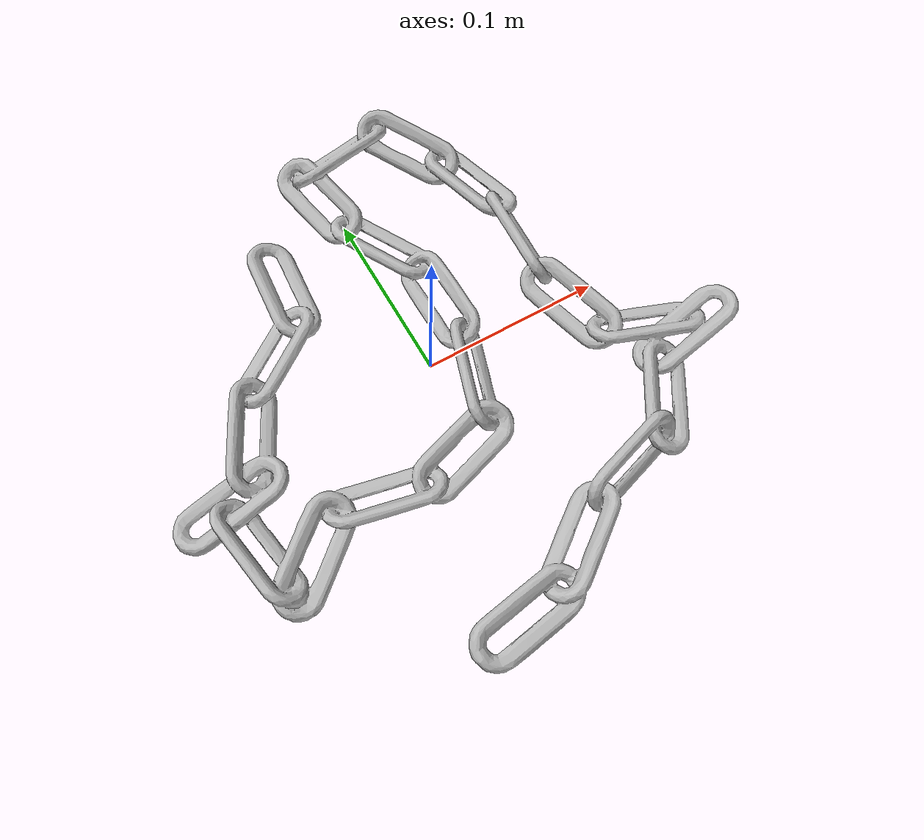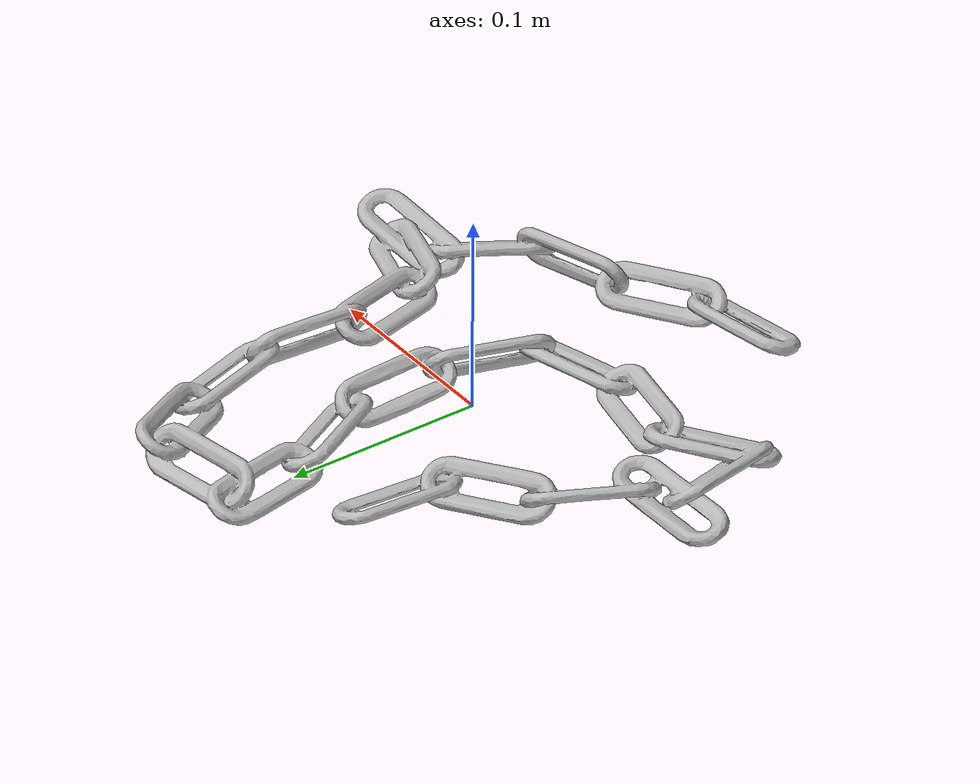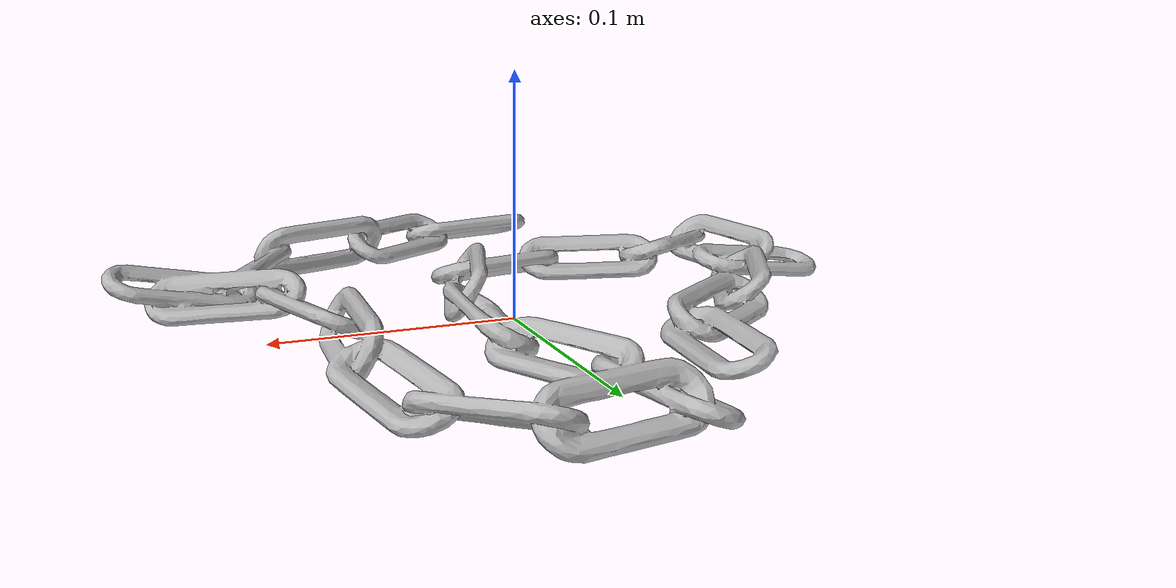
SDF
<?xml version="1.0" ?>
<sdf version='1.8'>
  <model name='ycb_059_chain'>
    <link name='body'>
      <inertial>
        <mass>0.1</mass>
        <pose>0.00370006207 -0.0029946739 0.00969024774 0 0 0</pose>
        <inertia>
          <ixx>0.000636099234782</ixx>
          <ixy>-4.39731361801e-05</ixy>
          <ixz>-5.32254429225e-06</ixz>
          <iyy>0.000558358205085</iyy>
          <iyz>-9.63504054245e-07</iyz>
          <izz>0.00118928367282</izz>
        </inertia>
      </inertial>
      <visual name='ycb_059_chain_visual'>
        <pose>0.037975 -0.02117 0.00068 0 0 0</pose>
        <geometry>
          <mesh>
            <uri>model://ycb_059_chain/meshes/textured.dae</uri>
          </mesh>
        </geometry>
      </visual>
      <collision name='ycb_059_chain_collision'>
        <pose>0.037975 -0.02117 0.00068 0 0 0</pose>
        <geometry>
          <mesh>
            <uri>model://ycb_059_chain/meshes/nontextured.stl</uri>
          </mesh>
        </geometry>
        <max_contacts>10</max_contacts>
        <surface>
          <contact>
            <ode>
              <kp>1e15</kp>
              <kd>1e13</kd>
            </ode>
          </contact>
        </surface>
      </collision>
    </link>
  </model>
</sdf>
